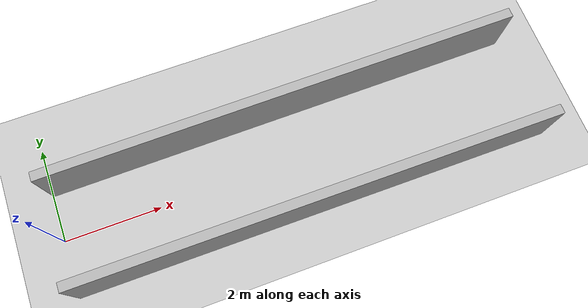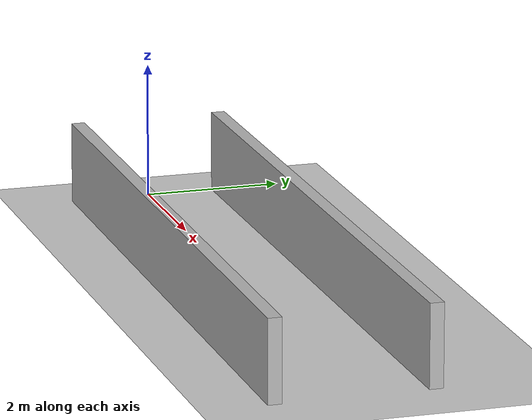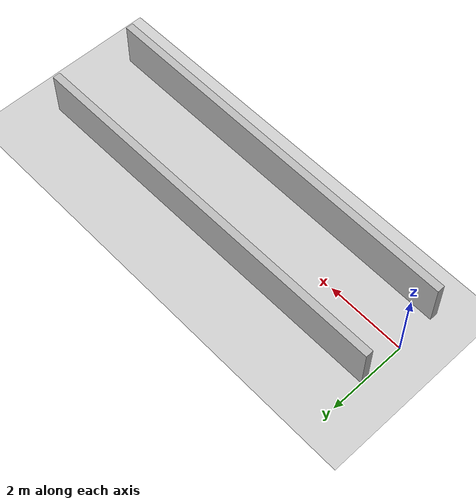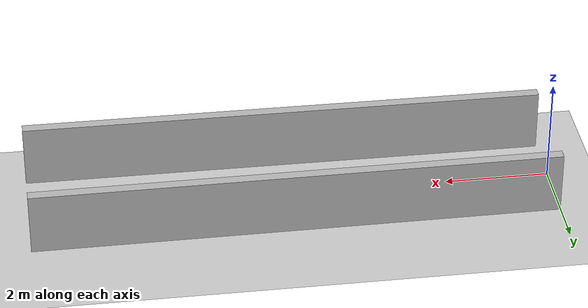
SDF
<?xml version="1.0"?>
<sdf version="1.6">
  <world name="v2-04d-corridor-s4604">
    <gravity>0 0 -9.81</gravity>
    <physics name="v2_deterministic" type="ode">
      <max_step_size>0.002</max_step_size>
      <real_time_update_rate>500</real_time_update_rate>
    </physics>
    <include>
      <uri>model://sun</uri>
    </include>
    <include>
      <uri>model://ground_plane</uri>
    </include>
    <model name="corridor-left">
      <static>true</static>
      <pose>5.006330161 1.100831260 0.600000000 0 0 0.003880706</pose>
      <link name="link">
        <collision name="collision">
          <geometry>
            <box>
              <size>10.000000 0.200000 1.200000</size>
            </box>
          </geometry>
        </collision>
        <visual name="visual">
          <geometry>
            <box>
              <size>10.000000 0.200000 1.200000</size>
            </box>
          </geometry>
        </visual>
      </link>
    </model>
    <model name="corridor-right">
      <static>true</static>
      <pose>5.011786147 -1.106824291 0.600000000 0 0 -0.003916778</pose>
      <link name="link">
        <collision name="collision">
          <geometry>
            <box>
              <size>10.000000 0.200000 1.200000</size>
            </box>
          </geometry>
        </collision>
        <visual name="visual">
          <geometry>
            <box>
              <size>10.000000 0.200000 1.200000</size>
            </box>
          </geometry>
        </visual>
      </link>
    </model>
  </world>
</sdf>
